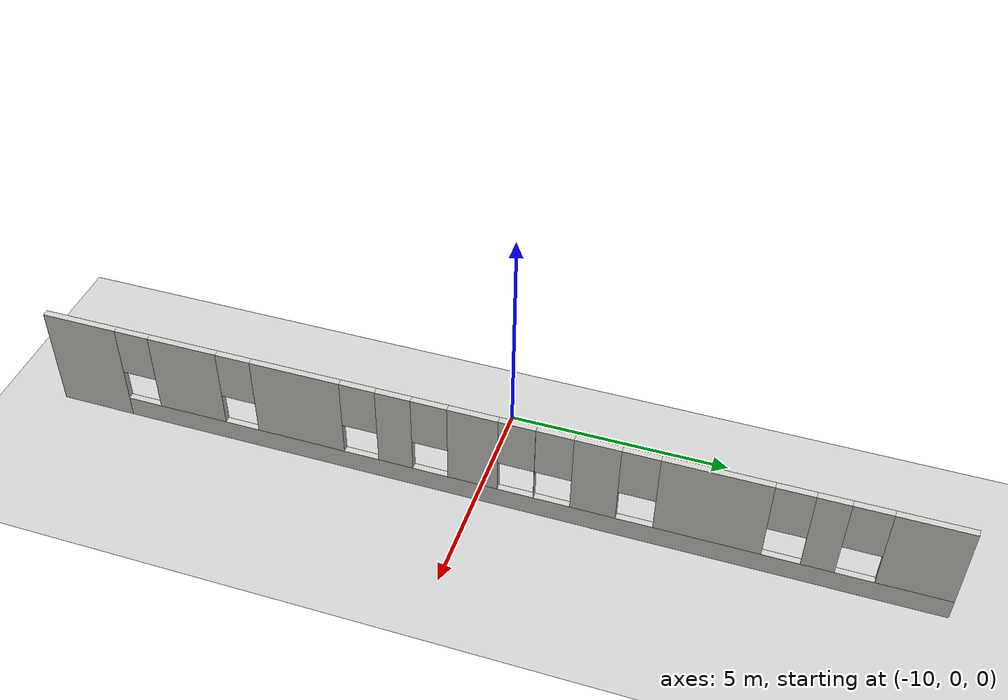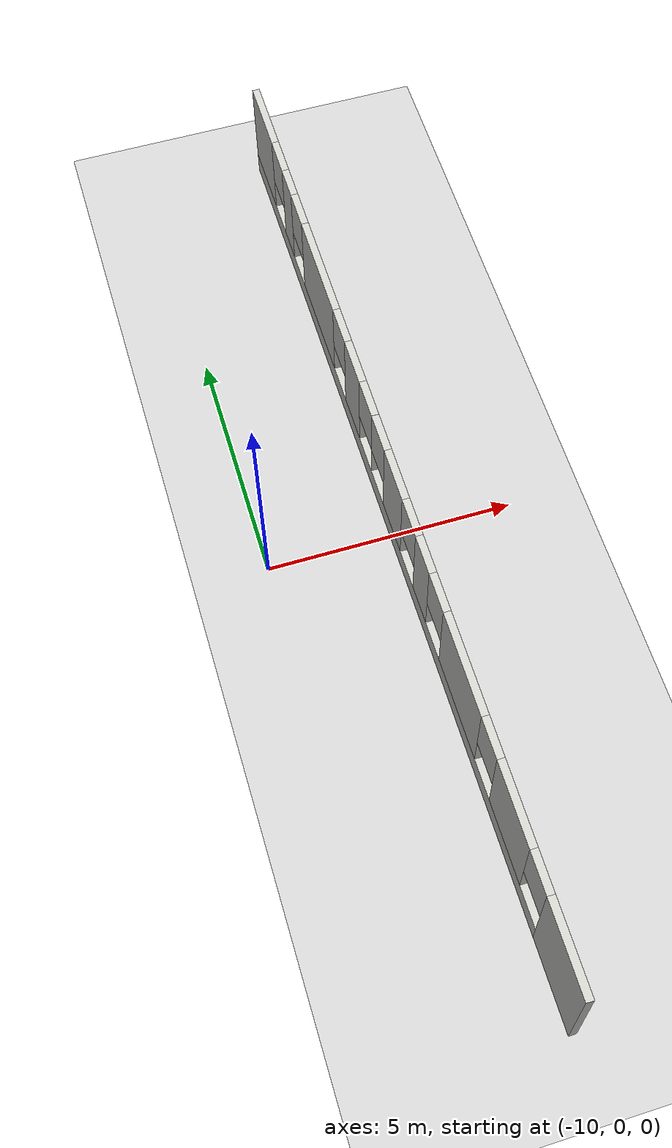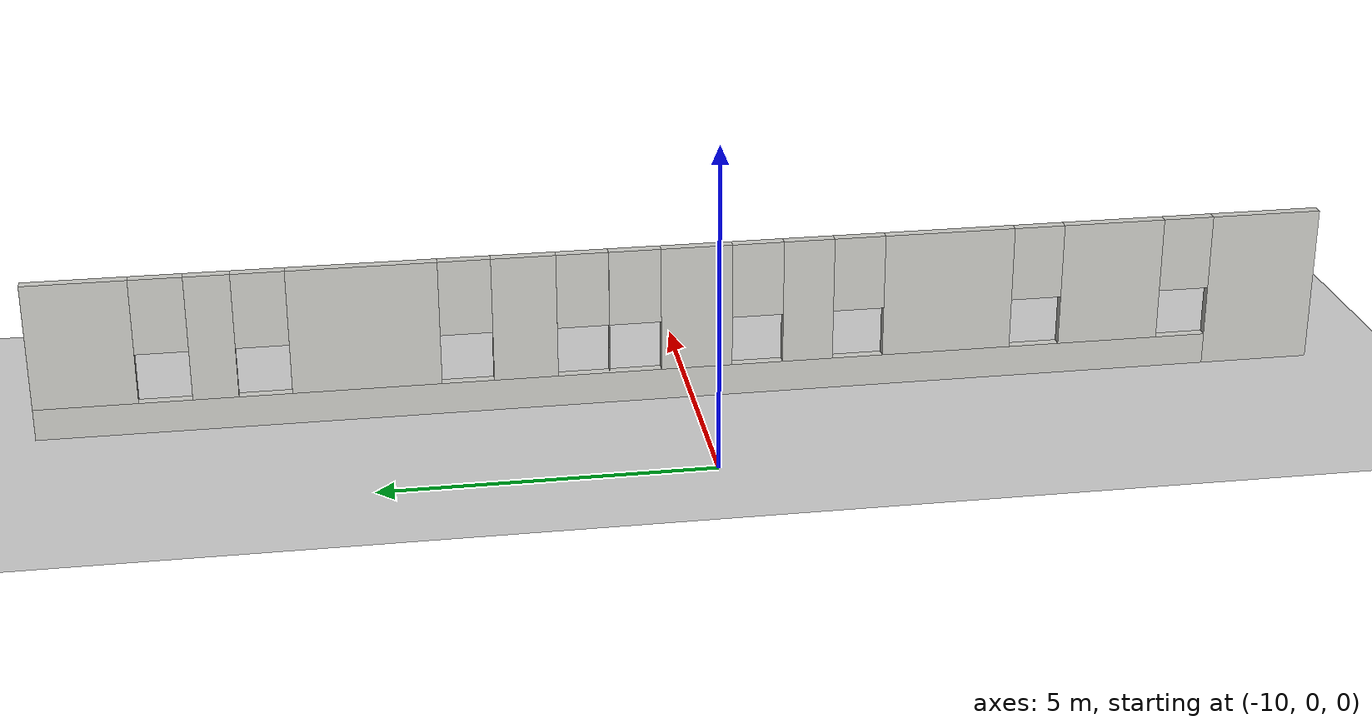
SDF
<sdf version="1.6">
 <world name="default">
  <model name="ground_plane">
   <static>1</static>
   <link name="link">
    <collision name="collision">
     <geometry><plane><normal>0 0 1</normal><size>100 100</size></plane></geometry>
     <surface>
      <contact><collide_bitmask>65535</collide_bitmask></contact>
      <friction><ode><mu>100</mu><mu2>50</mu2></ode></friction>
     </surface>
    </collision>
    <visual name="visual">
     <cast_shadows>0</cast_shadows>
     <geometry><plane><normal>0 0 1</normal><size>100 100</size></plane></geometry>
     <material>
      <script><uri>file://media/materials/scripts/gazebo.material</uri><name>Gazebo/Grey</name></script>
     </material>
    </visual>
   </link>
  </model>
  <model name="AutowayTower">
   <link name="Wall_3">
    <pose>0.012137 -7.42131 0 0 -0 3.14159</pose>
    <visual name="Wall_3_Visual_0">
     <pose>-9.12781 0 1.25 0 -0 0</pose>
     <geometry><box><size>1.74439 0.15 2.5</size></box></geometry>
     <material>
      <script><uri>file://media/materials/scripts/gazebo.material</uri><name>Gazebo/CeilingTiled</name></script>
      <ambient>1 1 1 1</ambient>
      <shader type="pixel"/>
      <diffuse>1 1 1 1</diffuse>
      <specular>0 0 0 1</specular>
      <emissive>0 0 0 1</emissive>
     </material>
     <meta><layer>0</layer></meta>
    </visual>
    <visual name="Wall_3_Visual_1">
     <pose>0.872195 0 0.25 0 -0 0</pose>
     <geometry><box><size>18.2556 0.15 0.5</size></box></geometry>
     <material>
      <script><uri>file://media/materials/scripts/gazebo.material</uri><name>Gazebo/CeilingTiled</name></script>
      <ambient>1 1 1 1</ambient>
      <shader type="pixel"/>
      <diffuse>1 1 1 1</diffuse>
      <specular>0 0 0 1</specular>
      <emissive>0 0 0 1</emissive>
     </material>
     <meta><layer>0</layer></meta>
    </visual>
    <visual name="Wall_3_Visual_2">
     <pose>-6.64879 0 1.5 0 -0 0</pose>
     <geometry><box><size>1.61363 0.15 2</size></box></geometry>
     <material>
      <script><uri>file://media/materials/scripts/gazebo.material</uri><name>Gazebo/CeilingTiled</name></script>
      <ambient>1 1 1 1</ambient>
      <shader type="pixel"/>
      <diffuse>1 1 1 1</diffuse>
      <specular>0 0 0 1</specular>
      <emissive>0 0 0 1</emissive>
     </material>
     <meta><layer>0</layer></meta>
    </visual>
    <visual name="Wall_3_Visual_3">
     <pose>-4.01654 0 1.5 0 -0 0</pose>
     <geometry><box><size>2.05088 0.15 2</size></box></geometry>
     <material>
      <script><uri>file://media/materials/scripts/gazebo.material</uri><name>Gazebo/CeilingTiled</name></script>
      <ambient>1 1 1 1</ambient>
      <shader type="pixel"/>
      <diffuse>1 1 1 1</diffuse>
      <specular>0 0 0 1</specular>
      <emissive>0 0 0 1</emissive>
     </material>
     <meta><layer>0</layer></meta>
    </visual>
    <visual name="Wall_3_Visual_6">
     <pose>1.30918 0 1.5 0 -0 0</pose>
     <geometry><box><size>0.004543 0.15 2</size></box></geometry>
     <material>
      <script><uri>file://media/materials/scripts/gazebo.material</uri><name>Gazebo/CeilingTiled</name></script>
      <ambient>1 1 1 1</ambient>
      <shader type="pixel"/>
      <diffuse>1 1 1 1</diffuse>
      <specular>0 0 0 1</specular>
      <emissive>0 0 0 1</emissive>
     </material>
     <meta><layer>0</layer></meta>
    </visual>
    <visual name="Wall_3_Visual_5">
     <pose>-0.046296 0 1.5 0 -0 0</pose>
     <geometry><box><size>1.10642 0.15 2</size></box></geometry>
     <material>
      <script><uri>file://media/materials/scripts/gazebo.material</uri><name>Gazebo/CeilingTiled</name></script>
      <ambient>1 1 1 1</ambient>
      <shader type="pixel"/>
      <diffuse>1 1 1 1</diffuse>
      <specular>0 0 0 1</specular>
      <emissive>0 0 0 1</emissive>
     </material>
     <meta><layer>0</layer></meta>
    </visual>
    <visual name="Wall_3_Visual_4">
     <pose>-1.7953 0 1.5 0 -0 0</pose>
     <geometry><box><size>0.791596 0.15 2</size></box></geometry>
     <material>
      <script><uri>file://media/materials/scripts/gazebo.material</uri><name>Gazebo/CeilingTiled</name></script>
      <ambient>1 1 1 1</ambient>
      <shader type="pixel"/>
      <diffuse>1 1 1 1</diffuse>
      <specular>0 0 0 1</specular>
      <emissive>0 0 0 1</emissive>
     </material>
     <meta><layer>0</layer></meta>
    </visual>
    <visual name="Wall_3_Visual_7">
     <pose>2.60345 0 1.5 0 -0 0</pose>
     <geometry><box><size>0.983986 0.15 2</size></box></geometry>
     <material>
      <script><uri>file://media/materials/scripts/gazebo.material</uri><name>Gazebo/CeilingTiled</name></script>
      <ambient>1 1 1 1</ambient>
      <shader type="pixel"/>
      <diffuse>1 1 1 1</diffuse>
      <specular>0 0 0 1</specular>
      <emissive>0 0 0 1</emissive>
     </material>
     <meta><layer>0</layer></meta>
    </visual>
    <visual name="Wall_3_Visual_8">
     <pose>5.02582 0 1.5 0 -0 0</pose>
     <geometry><box><size>2.26076 0.15 2</size></box></geometry>
     <material>
      <script><uri>file://media/materials/scripts/gazebo.material</uri><name>Gazebo/CeilingTiled</name></script>
      <ambient>1 1 1 1</ambient>
      <shader type="pixel"/>
      <diffuse>1 1 1 1</diffuse>
      <specular>0 0 0 1</specular>
      <emissive>0 0 0 1</emissive>
     </material>
     <meta><layer>0</layer></meta>
    </visual>
    <visual name="Wall_3_Visual_9">
     <pose>7.29953 0 1.5 0 -0 0</pose>
     <geometry><box><size>0.686655 0.15 2</size></box></geometry>
     <material>
      <script><uri>file://media/materials/scripts/gazebo.material</uri><name>Gazebo/CeilingTiled</name></script>
      <ambient>1 1 1 1</ambient>
      <shader type="pixel"/>
      <diffuse>1 1 1 1</diffuse>
      <specular>0 0 0 1</specular>
      <emissive>0 0 0 1</emissive>
     </material>
     <meta><layer>0</layer></meta>
    </visual>
    <visual name="Wall_3_Visual_10">
     <pose>9.22143 0 1.5 0 -0 0</pose>
     <geometry><box><size>1.55714 0.15 2</size></box></geometry>
     <material>
      <script><uri>file://media/materials/scripts/gazebo.material</uri><name>Gazebo/CeilingTiled</name></script>
      <ambient>1 1 1 1</ambient>
      <shader type="pixel"/>
      <diffuse>1 1 1 1</diffuse>
      <specular>0 0 0 1</specular>
      <emissive>0 0 0 1</emissive>
     </material>
     <meta><layer>0</layer></meta>
    </visual>
    <visual name="Wall_3_Visual_11">
     <pose>-7.85561 0 1.9 0 -0 0</pose>
     <geometry><box><size>0.8 0.15 1.2</size></box></geometry>
     <material>
      <script><uri>file://media/materials/scripts/gazebo.material</uri><name>Gazebo/CeilingTiled</name></script>
      <ambient>1 1 1 1</ambient>
      <shader type="pixel"/>
      <diffuse>1 1 1 1</diffuse>
      <specular>0 0 0 1</specular>
      <emissive>0 0 0 1</emissive>
     </material>
     <meta><layer>0</layer></meta>
    </visual>
    <visual name="Wall_3_Visual_12">
     <pose>-5.44198 0 1.9 0 -0 0</pose>
     <geometry><box><size>0.8 0.15 1.2</size></box></geometry>
     <material>
      <script><uri>file://media/materials/scripts/gazebo.material</uri><name>Gazebo/CeilingTiled</name></script>
      <ambient>1 1 1 1</ambient>
      <shader type="pixel"/>
      <diffuse>1 1 1 1</diffuse>
      <specular>0 0 0 1</specular>
      <emissive>0 0 0 1</emissive>
     </material>
     <meta><layer>0</layer></meta>
    </visual>
    <visual name="Wall_3_Visual_13">
     <pose>-2.5911 0 1.9 0 -0 0</pose>
     <geometry><box><size>0.8 0.15 1.2</size></box></geometry>
     <material>
      <script><uri>file://media/materials/scripts/gazebo.material</uri><name>Gazebo/CeilingTiled</name></script>
      <ambient>1 1 1 1</ambient>
      <shader type="pixel"/>
      <diffuse>1 1 1 1</diffuse>
      <specular>0 0 0 1</specular>
      <emissive>0 0 0 1</emissive>
     </material>
     <meta><layer>0</layer></meta>
    </visual>
    <visual name="Wall_3_Visual_14">
     <pose>-0.999505 0 1.9 0 -0 0</pose>
     <geometry><box><size>0.8 0.15 1.2</size></box></geometry>
     <material>
      <script><uri>file://media/materials/scripts/gazebo.material</uri><name>Gazebo/CeilingTiled</name></script>
      <ambient>1 1 1 1</ambient>
      <shader type="pixel"/>
      <diffuse>1 1 1 1</diffuse>
      <specular>0 0 0 1</specular>
      <emissive>0 0 0 1</emissive>
     </material>
     <meta><layer>0</layer></meta>
    </visual>
    <visual name="Wall_3_Visual_15">
     <pose>0.906912 0 1.9 0 -0 0</pose>
     <geometry><box><size>0.8 0.15 1.2</size></box></geometry>
     <material>
      <script><uri>file://media/materials/scripts/gazebo.material</uri><name>Gazebo/CeilingTiled</name></script>
      <ambient>1 1 1 1</ambient>
      <shader type="pixel"/>
      <diffuse>1 1 1 1</diffuse>
      <specular>0 0 0 1</specular>
      <emissive>0 0 0 1</emissive>
     </material>
     <meta><layer>0</layer></meta>
    </visual>
    <visual name="Wall_3_Visual_16">
     <pose>1.71145 0 1.9 0 -0 0</pose>
     <geometry><box><size>0.8 0.15 1.2</size></box></geometry>
     <material>
      <script><uri>file://media/materials/scripts/gazebo.material</uri><name>Gazebo/CeilingTiled</name></script>
      <ambient>1 1 1 1</ambient>
      <shader type="pixel"/>
      <diffuse>1 1 1 1</diffuse>
      <specular>0 0 0 1</specular>
      <emissive>0 0 0 1</emissive>
     </material>
     <meta><layer>0</layer></meta>
    </visual>
    <visual name="Wall_3_Visual_17">
     <pose>3.49544 0 1.9 0 -0 0</pose>
     <geometry><box><size>0.8 0.15 1.2</size></box></geometry>
     <material>
      <script><uri>file://media/materials/scripts/gazebo.material</uri><name>Gazebo/CeilingTiled</name></script>
      <ambient>1 1 1 1</ambient>
      <shader type="pixel"/>
      <diffuse>1 1 1 1</diffuse>
      <specular>0 0 0 1</specular>
      <emissive>0 0 0 1</emissive>
     </material>
     <meta><layer>0</layer></meta>
    </visual>
    <visual name="Wall_3_Visual_18">
     <pose>6.5562 0 1.9 0 -0 0</pose>
     <geometry><box><size>0.8 0.15 1.2</size></box></geometry>
     <material>
      <script><uri>file://media/materials/scripts/gazebo.material</uri><name>Gazebo/CeilingTiled</name></script>
      <ambient>1 1 1 1</ambient>
      <shader type="pixel"/>
      <diffuse>1 1 1 1</diffuse>
      <specular>0 0 0 1</specular>
      <emissive>0 0 0 1</emissive>
     </material>
     <meta><layer>0</layer></meta>
    </visual>
    <visual name="Wall_3_Visual_19">
     <pose>8.04286 0 1.9 0 -0 0</pose>
     <geometry><box><size>0.8 0.15 1.2</size></box></geometry>
     <material>
      <script><uri>file://media/materials/scripts/gazebo.material</uri><name>Gazebo/CeilingTiled</name></script>
      <ambient>1 1 1 1</ambient>
      <shader type="pixel"/>
      <diffuse>1 1 1 1</diffuse>
      <specular>0 0 0 1</specular>
      <emissive>0 0 0 1</emissive>
     </material>
     <meta><layer>0</layer></meta>
    </visual>
    <collision name="Wall_3_Collision_0">
     <pose>-9.12781 0 1.25 0 -0 0</pose>
     <geometry><box><size>1.74439 0.15 2.5</size></box></geometry>
     <surface>
      <friction>
       <ode><mu>1</mu><mu2>1</mu2><fdir1>0 0 0</fdir1><slip1>0</slip1><slip2>0</slip2></ode>
       <torsional>
        <coefficient>1</coefficient>
        <patch_radius>0</patch_radius>
        <surface_radius>0</surface_radius>
        <use_patch_radius>1</use_patch_radius>
        <ode><slip>0</slip></ode>
       </torsional>
      </friction>
      <bounce><restitution_coefficient>0</restitution_coefficient><threshold>1e+06</threshold></bounce>
      <contact>
       <collide_without_contact>0</collide_without_contact>
       <collide_without_contact_bitmask>1</collide_without_contact_bitmask>
       <collide_bitmask>1</collide_bitmask>
       <ode>
        <soft_cfm>0</soft_cfm>
        <soft_erp>0.2</soft_erp>
        <kp>1e+13</kp>
        <kd>1</kd>
        <max_vel>0.01</max_vel>
        <min_depth>0</min_depth>
       </ode>
       <bullet>
        <split_impulse>1</split_impulse>
        <split_impulse_penetration_threshold>-0.01</split_impulse_penetration_threshold>
        <soft_cfm>0</soft_cfm>
        <soft_erp>0.2</soft_erp>
        <kp>1e+13</kp>
        <kd>1</kd>
       </bullet>
      </contact>
     </surface>
    </collision>
    <collision name="Wall_3_Collision_1">
     <pose>0.872195 0 0.25 0 -0 0</pose>
     <geometry><box><size>18.2556 0.15 0.5</size></box></geometry>
     <surface>
      <friction>
       <ode><mu>1</mu><mu2>1</mu2><fdir1>0 0 0</fdir1><slip1>0</slip1><slip2>0</slip2></ode>
       <torsional>
        <coefficient>1</coefficient>
        <patch_radius>0</patch_radius>
        <surface_radius>0</surface_radius>
        <use_patch_radius>1</use_patch_radius>
        <ode><slip>0</slip></ode>
       </torsional>
      </friction>
      <bounce><restitution_coefficient>0</restitution_coefficient><threshold>1e+06</threshold></bounce>
      <contact>
       <collide_without_contact>0</collide_without_contact>
       <collide_without_contact_bitmask>1</collide_without_contact_bitmask>
       <collide_bitmask>1</collide_bitmask>
       <ode>
        <soft_cfm>0</soft_cfm>
        <soft_erp>0.2</soft_erp>
        <kp>1e+13</kp>
        <kd>1</kd>
        <max_vel>0.01</max_vel>
        <min_depth>0</min_depth>
       </ode>
       <bullet>
        <split_impulse>1</split_impulse>
        <split_impulse_penetration_threshold>-0.01</split_impulse_penetration_threshold>
        <soft_cfm>0</soft_cfm>
        <soft_erp>0.2</soft_erp>
        <kp>1e+13</kp>
        <kd>1</kd>
       </bullet>
      </contact>
     </surface>
    </collision>
    <collision name="Wall_3_Collision_2">
     <pose>-6.64879 0 1.5 0 -0 0</pose>
     <geometry><box><size>1.61363 0.15 2</size></box></geometry>
     <surface>
      <friction>
       <ode><mu>1</mu><mu2>1</mu2><fdir1>0 0 0</fdir1><slip1>0</slip1><slip2>0</slip2></ode>
       <torsional>
        <coefficient>1</coefficient>
        <patch_radius>0</patch_radius>
        <surface_radius>0</surface_radius>
        <use_patch_radius>1</use_patch_radius>
        <ode><slip>0</slip></ode>
       </torsional>
      </friction>
      <bounce><restitution_coefficient>0</restitution_coefficient><threshold>1e+06</threshold></bounce>
      <contact>
       <collide_without_contact>0</collide_without_contact>
       <collide_without_contact_bitmask>1</collide_without_contact_bitmask>
       <collide_bitmask>1</collide_bitmask>
       <ode>
        <soft_cfm>0</soft_cfm>
        <soft_erp>0.2</soft_erp>
        <kp>1e+13</kp>
        <kd>1</kd>
        <max_vel>0.01</max_vel>
        <min_depth>0</min_depth>
       </ode>
       <bullet>
        <split_impulse>1</split_impulse>
        <split_impulse_penetration_threshold>-0.01</split_impulse_penetration_threshold>
        <soft_cfm>0</soft_cfm>
        <soft_erp>0.2</soft_erp>
        <kp>1e+13</kp>
        <kd>1</kd>
       </bullet>
      </contact>
     </surface>
    </collision>
    <collision name="Wall_3_Collision_3">
     <pose>-4.01654 0 1.5 0 -0 0</pose>
     <geometry><box><size>2.05088 0.15 2</size></box></geometry>
     <surface>
      <friction>
       <ode><mu>1</mu><mu2>1</mu2><fdir1>0 0 0</fdir1><slip1>0</slip1><slip2>0</slip2></ode>
       <torsional>
        <coefficient>1</coefficient>
        <patch_radius>0</patch_radius>
        <surface_radius>0</surface_radius>
        <use_patch_radius>1</use_patch_radius>
        <ode><slip>0</slip></ode>
       </torsional>
      </friction>
      <bounce><restitution_coefficient>0</restitution_coefficient><threshold>1e+06</threshold></bounce>
      <contact>
       <collide_without_contact>0</collide_without_contact>
       <collide_without_contact_bitmask>1</collide_without_contact_bitmask>
       <collide_bitmask>1</collide_bitmask>
       <ode>
        <soft_cfm>0</soft_cfm>
        <soft_erp>0.2</soft_erp>
        <kp>1e+13</kp>
        <kd>1</kd>
        <max_vel>0.01</max_vel>
        <min_depth>0</min_depth>
       </ode>
       <bullet>
        <split_impulse>1</split_impulse>
        <split_impulse_penetration_threshold>-0.01</split_impulse_penetration_threshold>
        <soft_cfm>0</soft_cfm>
        <soft_erp>0.2</soft_erp>
        <kp>1e+13</kp>
        <kd>1</kd>
       </bullet>
      </contact>
     </surface>
    </collision>
    <collision name="Wall_3_Collision_4">
     <pose>-1.7953 0 1.5 0 -0 0</pose>
     <geometry><box><size>0.791596 0.15 2</size></box></geometry>
     <surface>
      <friction>
       <ode><mu>1</mu><mu2>1</mu2><fdir1>0 0 0</fdir1><slip1>0</slip1><slip2>0</slip2></ode>
       <torsional>
        <coefficient>1</coefficient>
        <patch_radius>0</patch_radius>
        <surface_radius>0</surface_radius>
        <use_patch_radius>1</use_patch_radius>
        <ode><slip>0</slip></ode>
       </torsional>
      </friction>
      <bounce><restitution_coefficient>0</restitution_coefficient><threshold>1e+06</threshold></bounce>
      <contact>
       <collide_without_contact>0</collide_without_contact>
       <collide_without_contact_bitmask>1</collide_without_contact_bitmask>
       <collide_bitmask>1</collide_bitmask>
       <ode>
        <soft_cfm>0</soft_cfm>
        <soft_erp>0.2</soft_erp>
        <kp>1e+13</kp>
        <kd>1</kd>
        <max_vel>0.01</max_vel>
        <min_depth>0</min_depth>
       </ode>
       <bullet>
        <split_impulse>1</split_impulse>
        <split_impulse_penetration_threshold>-0.01</split_impulse_penetration_threshold>
        <soft_cfm>0</soft_cfm>
        <soft_erp>0.2</soft_erp>
        <kp>1e+13</kp>
        <kd>1</kd>
       </bullet>
      </contact>
     </surface>
    </collision>
    <collision name="Wall_3_Collision_11">
     <pose>-7.85561 0 1.9 0 -0 0</pose>
     <geometry><box><size>0.8 0.15 1.2</size></box></geometry>
     <surface>
      <friction>
       <ode><mu>1</mu><mu2>1</mu2><fdir1>0 0 0</fdir1><slip1>0</slip1><slip2>0</slip2></ode>
       <torsional>
        <coefficient>1</coefficient>
        <patch_radius>0</patch_radius>
        <surface_radius>0</surface_radius>
        <use_patch_radius>1</use_patch_radius>
        <ode><slip>0</slip></ode>
       </torsional>
      </friction>
      <bounce><restitution_coefficient>0</restitution_coefficient><threshold>1e+06</threshold></bounce>
      <contact>
       <collide_without_contact>0</collide_without_contact>
       <collide_without_contact_bitmask>1</collide_without_contact_bitmask>
       <collide_bitmask>1</collide_bitmask>
       <ode>
        <soft_cfm>0</soft_cfm>
        <soft_erp>0.2</soft_erp>
        <kp>1e+13</kp>
        <kd>1</kd>
        <max_vel>0.01</max_vel>
        <min_depth>0</min_depth>
       </ode>
       <bullet>
        <split_impulse>1</split_impulse>
        <split_impulse_penetration_threshold>-0.01</split_impulse_penetration_threshold>
        <soft_cfm>0</soft_cfm>
        <soft_erp>0.2</soft_erp>
        <kp>1e+13</kp>
        <kd>1</kd>
       </bullet>
      </contact>
     </surface>
    </collision>
    <collision name="Wall_3_Collision_5">
     <pose>-0.046296 0 1.5 0 -0 0</pose>
     <geometry><box><size>1.10642 0.15 2</size></box></geometry>
     <surface>
      <friction>
       <ode><mu>1</mu><mu2>1</mu2><fdir1>0 0 0</fdir1><slip1>0</slip1><slip2>0</slip2></ode>
       <torsional>
        <coefficient>1</coefficient>
        <patch_radius>0</patch_radius>
        <surface_radius>0</surface_radius>
        <use_patch_radius>1</use_patch_radius>
        <ode><slip>0</slip></ode>
       </torsional>
      </friction>
      <bounce><restitution_coefficient>0</restitution_coefficient><threshold>1e+06</threshold></bounce>
      <contact>
       <collide_without_contact>0</collide_without_contact>
       <collide_without_contact_bitmask>1</collide_without_contact_bitmask>
       <collide_bitmask>1</collide_bitmask>
       <ode>
        <soft_cfm>0</soft_cfm>
        <soft_erp>0.2</soft_erp>
        <kp>1e+13</kp>
        <kd>1</kd>
        <max_vel>0.01</max_vel>
        <min_depth>0</min_depth>
       </ode>
       <bullet>
        <split_impulse>1</split_impulse>
        <split_impulse_penetration_threshold>-0.01</split_impulse_penetration_threshold>
        <soft_cfm>0</soft_cfm>
        <soft_erp>0.2</soft_erp>
        <kp>1e+13</kp>
        <kd>1</kd>
       </bullet>
      </contact>
     </surface>
    </collision>
    <collision name="Wall_3_Collision_6">
     <pose>1.30918 0 1.5 0 -0 0</pose>
     <geometry><box><size>0.004543 0.15 2</size></box></geometry>
     <surface>
      <friction>
       <ode><mu>1</mu><mu2>1</mu2><fdir1>0 0 0</fdir1><slip1>0</slip1><slip2>0</slip2></ode>
       <torsional>
        <coefficient>1</coefficient>
        <patch_radius>0</patch_radius>
        <surface_radius>0</surface_radius>
        <use_patch_radius>1</use_patch_radius>
        <ode><slip>0</slip></ode>
       </torsional>
      </friction>
      <bounce><restitution_coefficient>0</restitution_coefficient><threshold>1e+06</threshold></bounce>
      <contact>
       <collide_without_contact>0</collide_without_contact>
       <collide_without_contact_bitmask>1</collide_without_contact_bitmask>
       <collide_bitmask>1</collide_bitmask>
       <ode>
        <soft_cfm>0</soft_cfm>
        <soft_erp>0.2</soft_erp>
        <kp>1e+13</kp>
        <kd>1</kd>
        <max_vel>0.01</max_vel>
        <min_depth>0</min_depth>
       </ode>
       <bullet>
        <split_impulse>1</split_impulse>
        <split_impulse_penetration_threshold>-0.01</split_impulse_penetration_threshold>
        <soft_cfm>0</soft_cfm>
        <soft_erp>0.2</soft_erp>
        <kp>1e+13</kp>
        <kd>1</kd>
       </bullet>
      </contact>
     </surface>
    </collision>
    <collision name="Wall_3_Collision_7">
     <pose>2.60345 0 1.5 0 -0 0</pose>
     <geometry><box><size>0.983986 0.15 2</size></box></geometry>
     <surface>
      <friction>
       <ode><mu>1</mu><mu2>1</mu2><fdir1>0 0 0</fdir1><slip1>0</slip1><slip2>0</slip2></ode>
       <torsional>
        <coefficient>1</coefficient>
        <patch_radius>0</patch_radius>
        <surface_radius>0</surface_radius>
        <use_patch_radius>1</use_patch_radius>
        <ode><slip>0</slip></ode>
       </torsional>
      </friction>
      <bounce><restitution_coefficient>0</restitution_coefficient><threshold>1e+06</threshold></bounce>
      <contact>
       <collide_without_contact>0</collide_without_contact>
       <collide_without_contact_bitmask>1</collide_without_contact_bitmask>
       <collide_bitmask>1</collide_bitmask>
       <ode>
        <soft_cfm>0</soft_cfm>
        <soft_erp>0.2</soft_erp>
        <kp>1e+13</kp>
        <kd>1</kd>
        <max_vel>0.01</max_vel>
        <min_depth>0</min_depth>
       </ode>
       <bullet>
        <split_impulse>1</split_impulse>
        <split_impulse_penetration_threshold>-0.01</split_impulse_penetration_threshold>
        <soft_cfm>0</soft_cfm>
        <soft_erp>0.2</soft_erp>
        <kp>1e+13</kp>
        <kd>1</kd>
       </bullet>
      </contact>
     </surface>
    </collision>
    <collision name="Wall_3_Collision_9">
     <pose>7.29953 0 1.5 0 -0 0</pose>
     <geometry><box><size>0.686655 0.15 2</size></box></geometry>
     <surface>
      <friction>
       <ode><mu>1</mu><mu2>1</mu2><fdir1>0 0 0</fdir1><slip1>0</slip1><slip2>0</slip2></ode>
       <torsional>
        <coefficient>1</coefficient>
        <patch_radius>0</patch_radius>
        <surface_radius>0</surface_radius>
        <use_patch_radius>1</use_patch_radius>
        <ode><slip>0</slip></ode>
       </torsional>
      </friction>
      <bounce><restitution_coefficient>0</restitution_coefficient><threshold>1e+06</threshold></bounce>
      <contact>
       <collide_without_contact>0</collide_without_contact>
       <collide_without_contact_bitmask>1</collide_without_contact_bitmask>
       <collide_bitmask>1</collide_bitmask>
       <ode>
        <soft_cfm>0</soft_cfm>
        <soft_erp>0.2</soft_erp>
        <kp>1e+13</kp>
        <kd>1</kd>
        <max_vel>0.01</max_vel>
        <min_depth>0</min_depth>
       </ode>
       <bullet>
        <split_impulse>1</split_impulse>
        <split_impulse_penetration_threshold>-0.01</split_impulse_penetration_threshold>
        <soft_cfm>0</soft_cfm>
        <soft_erp>0.2</soft_erp>
        <kp>1e+13</kp>
        <kd>1</kd>
       </bullet>
      </contact>
     </surface>
    </collision>
    <collision name="Wall_3_Collision_10">
     <pose>9.22143 0 1.5 0 -0 0</pose>
     <geometry><box><size>1.55714 0.15 2</size></box></geometry>
     <surface>
      <friction>
       <ode><mu>1</mu><mu2>1</mu2><fdir1>0 0 0</fdir1><slip1>0</slip1><slip2>0</slip2></ode>
       <torsional>
        <coefficient>1</coefficient>
        <patch_radius>0</patch_radius>
        <surface_radius>0</surface_radius>
        <use_patch_radius>1</use_patch_radius>
        <ode><slip>0</slip></ode>
       </torsional>
      </friction>
      <bounce><restitution_coefficient>0</restitution_coefficient><threshold>1e+06</threshold></bounce>
      <contact>
       <collide_without_contact>0</collide_without_contact>
       <collide_without_contact_bitmask>1</collide_without_contact_bitmask>
       <collide_bitmask>1</collide_bitmask>
       <ode>
        <soft_cfm>0</soft_cfm>
        <soft_erp>0.2</soft_erp>
        <kp>1e+13</kp>
        <kd>1</kd>
        <max_vel>0.01</max_vel>
        <min_depth>0</min_depth>
       </ode>
       <bullet>
        <split_impulse>1</split_impulse>
        <split_impulse_penetration_threshold>-0.01</split_impulse_penetration_threshold>
        <soft_cfm>0</soft_cfm>
        <soft_erp>0.2</soft_erp>
        <kp>1e+13</kp>
        <kd>1</kd>
       </bullet>
      </contact>
     </surface>
    </collision>
    <collision name="Wall_3_Collision_8">
     <pose>5.02582 0 1.5 0 -0 0</pose>
     <geometry><box><size>2.26076 0.15 2</size></box></geometry>
     <surface>
      <friction>
       <ode><mu>1</mu><mu2>1</mu2><fdir1>0 0 0</fdir1><slip1>0</slip1><slip2>0</slip2></ode>
       <torsional>
        <coefficient>1</coefficient>
        <patch_radius>0</patch_radius>
        <surface_radius>0</surface_radius>
        <use_patch_radius>1</use_patch_radius>
        <ode><slip>0</slip></ode>
       </torsional>
      </friction>
      <bounce><restitution_coefficient>0</restitution_coefficient><threshold>1e+06</threshold></bounce>
      <contact>
       <collide_without_contact>0</collide_without_contact>
       <collide_without_contact_bitmask>1</collide_without_contact_bitmask>
       <collide_bitmask>1</collide_bitmask>
       <ode>
        <soft_cfm>0</soft_cfm>
        <soft_erp>0.2</soft_erp>
        <kp>1e+13</kp>
        <kd>1</kd>
        <max_vel>0.01</max_vel>
        <min_depth>0</min_depth>
       </ode>
       <bullet>
        <split_impulse>1</split_impulse>
        <split_impulse_penetration_threshold>-0.01</split_impulse_penetration_threshold>
        <soft_cfm>0</soft_cfm>
        <soft_erp>0.2</soft_erp>
        <kp>1e+13</kp>
        <kd>1</kd>
       </bullet>
      </contact>
     </surface>
    </collision>
    <collision name="Wall_3_Collision_16">
     <pose>1.71145 0 1.9 0 -0 0</pose>
     <geometry><box><size>0.8 0.15 1.2</size></box></geometry>
     <surface>
      <friction>
       <ode><mu>1</mu><mu2>1</mu2><fdir1>0 0 0</fdir1><slip1>0</slip1><slip2>0</slip2></ode>
       <torsional>
        <coefficient>1</coefficient>
        <patch_radius>0</patch_radius>
        <surface_radius>0</surface_radius>
        <use_patch_radius>1</use_patch_radius>
        <ode><slip>0</slip></ode>
       </torsional>
      </friction>
      <bounce><restitution_coefficient>0</restitution_coefficient><threshold>1e+06</threshold></bounce>
      <contact>
       <collide_without_contact>0</collide_without_contact>
       <collide_without_contact_bitmask>1</collide_without_contact_bitmask>
       <collide_bitmask>1</collide_bitmask>
       <ode>
        <soft_cfm>0</soft_cfm>
        <soft_erp>0.2</soft_erp>
        <kp>1e+13</kp>
        <kd>1</kd>
        <max_vel>0.01</max_vel>
        <min_depth>0</min_depth>
       </ode>
       <bullet>
        <split_impulse>1</split_impulse>
        <split_impulse_penetration_threshold>-0.01</split_impulse_penetration_threshold>
        <soft_cfm>0</soft_cfm>
        <soft_erp>0.2</soft_erp>
        <kp>1e+13</kp>
        <kd>1</kd>
       </bullet>
      </contact>
     </surface>
    </collision>
    <collision name="Wall_3_Collision_12">
     <pose>-5.44198 0 1.9 0 -0 0</pose>
     <geometry><box><size>0.8 0.15 1.2</size></box></geometry>
     <surface>
      <friction>
       <ode><mu>1</mu><mu2>1</mu2><fdir1>0 0 0</fdir1><slip1>0</slip1><slip2>0</slip2></ode>
       <torsional>
        <coefficient>1</coefficient>
        <patch_radius>0</patch_radius>
        <surface_radius>0</surface_radius>
        <use_patch_radius>1</use_patch_radius>
        <ode><slip>0</slip></ode>
       </torsional>
      </friction>
      <bounce><restitution_coefficient>0</restitution_coefficient><threshold>1e+06</threshold></bounce>
      <contact>
       <collide_without_contact>0</collide_without_contact>
       <collide_without_contact_bitmask>1</collide_without_contact_bitmask>
       <collide_bitmask>1</collide_bitmask>
       <ode>
        <soft_cfm>0</soft_cfm>
        <soft_erp>0.2</soft_erp>
        <kp>1e+13</kp>
        <kd>1</kd>
        <max_vel>0.01</max_vel>
        <min_depth>0</min_depth>
       </ode>
       <bullet>
        <split_impulse>1</split_impulse>
        <split_impulse_penetration_threshold>-0.01</split_impulse_penetration_threshold>
        <soft_cfm>0</soft_cfm>
        <soft_erp>0.2</soft_erp>
        <kp>1e+13</kp>
        <kd>1</kd>
       </bullet>
      </contact>
     </surface>
    </collision>
    <collision name="Wall_3_Collision_13">
     <pose>-2.5911 0 1.9 0 -0 0</pose>
     <geometry><box><size>0.8 0.15 1.2</size></box></geometry>
     <surface>
      <friction>
       <ode><mu>1</mu><mu2>1</mu2><fdir1>0 0 0</fdir1><slip1>0</slip1><slip2>0</slip2></ode>
       <torsional>
        <coefficient>1</coefficient>
        <patch_radius>0</patch_radius>
        <surface_radius>0</surface_radius>
        <use_patch_radius>1</use_patch_radius>
        <ode><slip>0</slip></ode>
       </torsional>
      </friction>
      <bounce><restitution_coefficient>0</restitution_coefficient><threshold>1e+06</threshold></bounce>
      <contact>
       <collide_without_contact>0</collide_without_contact>
       <collide_without_contact_bitmask>1</collide_without_contact_bitmask>
       <collide_bitmask>1</collide_bitmask>
       <ode>
        <soft_cfm>0</soft_cfm>
        <soft_erp>0.2</soft_erp>
        <kp>1e+13</kp>
        <kd>1</kd>
        <max_vel>0.01</max_vel>
        <min_depth>0</min_depth>
       </ode>
       <bullet>
        <split_impulse>1</split_impulse>
        <split_impulse_penetration_threshold>-0.01</split_impulse_penetration_threshold>
        <soft_cfm>0</soft_cfm>
        <soft_erp>0.2</soft_erp>
        <kp>1e+13</kp>
        <kd>1</kd>
       </bullet>
      </contact>
     </surface>
    </collision>
    <collision name="Wall_3_Collision_14">
     <pose>-0.999505 0 1.9 0 -0 0</pose>
     <geometry><box><size>0.8 0.15 1.2</size></box></geometry>
     <surface>
      <friction>
       <ode><mu>1</mu><mu2>1</mu2><fdir1>0 0 0</fdir1><slip1>0</slip1><slip2>0</slip2></ode>
       <torsional>
        <coefficient>1</coefficient>
        <patch_radius>0</patch_radius>
        <surface_radius>0</surface_radius>
        <use_patch_radius>1</use_patch_radius>
        <ode><slip>0</slip></ode>
       </torsional>
      </friction>
      <bounce><restitution_coefficient>0</restitution_coefficient><threshold>1e+06</threshold></bounce>
      <contact>
       <collide_without_contact>0</collide_without_contact>
       <collide_without_contact_bitmask>1</collide_without_contact_bitmask>
       <collide_bitmask>1</collide_bitmask>
       <ode>
        <soft_cfm>0</soft_cfm>
        <soft_erp>0.2</soft_erp>
        <kp>1e+13</kp>
        <kd>1</kd>
        <max_vel>0.01</max_vel>
        <min_depth>0</min_depth>
       </ode>
       <bullet>
        <split_impulse>1</split_impulse>
        <split_impulse_penetration_threshold>-0.01</split_impulse_penetration_threshold>
        <soft_cfm>0</soft_cfm>
        <soft_erp>0.2</soft_erp>
        <kp>1e+13</kp>
        <kd>1</kd>
       </bullet>
      </contact>
     </surface>
    </collision>
    <collision name="Wall_3_Collision_15">
     <pose>0.906912 0 1.9 0 -0 0</pose>
     <geometry><box><size>0.8 0.15 1.2</size></box></geometry>
     <surface>
      <friction>
       <ode><mu>1</mu><mu2>1</mu2><fdir1>0 0 0</fdir1><slip1>0</slip1><slip2>0</slip2></ode>
       <torsional>
        <coefficient>1</coefficient>
        <patch_radius>0</patch_radius>
        <surface_radius>0</surface_radius>
        <use_patch_radius>1</use_patch_radius>
        <ode><slip>0</slip></ode>
       </torsional>
      </friction>
      <bounce><restitution_coefficient>0</restitution_coefficient><threshold>1e+06</threshold></bounce>
      <contact>
       <collide_without_contact>0</collide_without_contact>
       <collide_without_contact_bitmask>1</collide_without_contact_bitmask>
       <collide_bitmask>1</collide_bitmask>
       <ode>
        <soft_cfm>0</soft_cfm>
        <soft_erp>0.2</soft_erp>
        <kp>1e+13</kp>
        <kd>1</kd>
        <max_vel>0.01</max_vel>
        <min_depth>0</min_depth>
       </ode>
       <bullet>
        <split_impulse>1</split_impulse>
        <split_impulse_penetration_threshold>-0.01</split_impulse_penetration_threshold>
        <soft_cfm>0</soft_cfm>
        <soft_erp>0.2</soft_erp>
        <kp>1e+13</kp>
        <kd>1</kd>
       </bullet>
      </contact>
     </surface>
    </collision>
    <collision name="Wall_3_Collision_17">
     <pose>3.49544 0 1.9 0 -0 0</pose>
     <geometry><box><size>0.8 0.15 1.2</size></box></geometry>
     <surface>
      <friction>
       <ode><mu>1</mu><mu2>1</mu2><fdir1>0 0 0</fdir1><slip1>0</slip1><slip2>0</slip2></ode>
       <torsional>
        <coefficient>1</coefficient>
        <patch_radius>0</patch_radius>
        <surface_radius>0</surface_radius>
        <use_patch_radius>1</use_patch_radius>
        <ode><slip>0</slip></ode>
       </torsional>
      </friction>
      <bounce><restitution_coefficient>0</restitution_coefficient><threshold>1e+06</threshold></bounce>
      <contact>
       <collide_without_contact>0</collide_without_contact>
       <collide_without_contact_bitmask>1</collide_without_contact_bitmask>
       <collide_bitmask>1</collide_bitmask>
       <ode>
        <soft_cfm>0</soft_cfm>
        <soft_erp>0.2</soft_erp>
        <kp>1e+13</kp>
        <kd>1</kd>
        <max_vel>0.01</max_vel>
        <min_depth>0</min_depth>
       </ode>
       <bullet>
        <split_impulse>1</split_impulse>
        <split_impulse_penetration_threshold>-0.01</split_impulse_penetration_threshold>
        <soft_cfm>0</soft_cfm>
        <soft_erp>0.2</soft_erp>
        <kp>1e+13</kp>
        <kd>1</kd>
       </bullet>
      </contact>
     </surface>
    </collision>
    <collision name="Wall_3_Collision_18">
     <pose>6.5562 0 1.9 0 -0 0</pose>
     <geometry><box><size>0.8 0.15 1.2</size></box></geometry>
     <surface>
      <friction>
       <ode><mu>1</mu><mu2>1</mu2><fdir1>0 0 0</fdir1><slip1>0</slip1><slip2>0</slip2></ode>
       <torsional>
        <coefficient>1</coefficient>
        <patch_radius>0</patch_radius>
        <surface_radius>0</surface_radius>
        <use_patch_radius>1</use_patch_radius>
        <ode><slip>0</slip></ode>
       </torsional>
      </friction>
      <bounce><restitution_coefficient>0</restitution_coefficient><threshold>1e+06</threshold></bounce>
      <contact>
       <collide_without_contact>0</collide_without_contact>
       <collide_without_contact_bitmask>1</collide_without_contact_bitmask>
       <collide_bitmask>1</collide_bitmask>
       <ode>
        <soft_cfm>0</soft_cfm>
        <soft_erp>0.2</soft_erp>
        <kp>1e+13</kp>
        <kd>1</kd>
        <max_vel>0.01</max_vel>
        <min_depth>0</min_depth>
       </ode>
       <bullet>
        <split_impulse>1</split_impulse>
        <split_impulse_penetration_threshold>-0.01</split_impulse_penetration_threshold>
        <soft_cfm>0</soft_cfm>
        <soft_erp>0.2</soft_erp>
        <kp>1e+13</kp>
        <kd>1</kd>
       </bullet>
      </contact>
     </surface>
    </collision>
    <collision name="Wall_3_Collision_19">
     <pose>8.04286 0 1.9 0 -0 0</pose>
     <geometry><box><size>0.8 0.15 1.2</size></box></geometry>
     <surface>
      <friction>
       <ode><mu>1</mu><mu2>1</mu2><fdir1>0 0 0</fdir1><slip1>0</slip1><slip2>0</slip2></ode>
       <torsional>
        <coefficient>1</coefficient>
        <patch_radius>0</patch_radius>
        <surface_radius>0</surface_radius>
        <use_patch_radius>1</use_patch_radius>
        <ode><slip>0</slip></ode>
       </torsional>
      </friction>
      <bounce><restitution_coefficient>0</restitution_coefficient><threshold>1e+06</threshold></bounce>
      <contact>
       <collide_without_contact>0</collide_without_contact>
       <collide_without_contact_bitmask>1</collide_without_contact_bitmask>
       <collide_bitmask>1</collide_bitmask>
       <ode>
        <soft_cfm>0</soft_cfm>
        <soft_erp>0.2</soft_erp>
        <kp>1e+13</kp>
        <kd>1</kd>
        <max_vel>0.01</max_vel>
        <min_depth>0</min_depth>
       </ode>
       <bullet>
        <split_impulse>1</split_impulse>
        <split_impulse_penetration_threshold>-0.01</split_impulse_penetration_threshold>
        <soft_cfm>0</soft_cfm>
        <soft_erp>0.2</soft_erp>
        <kp>1e+13</kp>
        <kd>1</kd>
       </bullet>
      </contact>
     </surface>
    </collision>
   </link>
   <static>1</static>
   <pose>3e-06 0 0 0 0 -1.57</pose>
  </model>
 </world>
</sdf>
